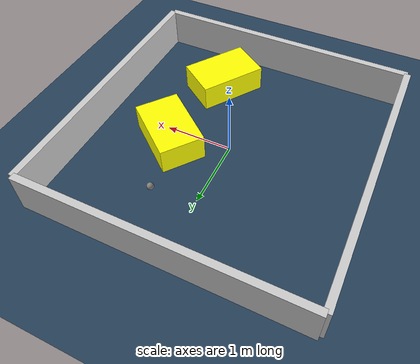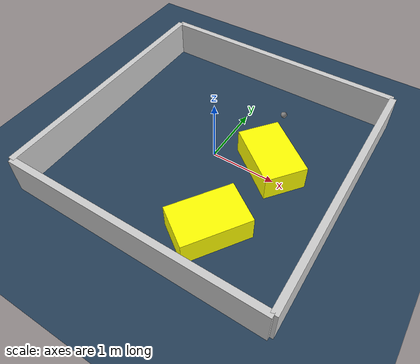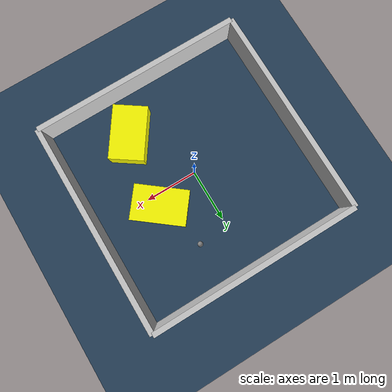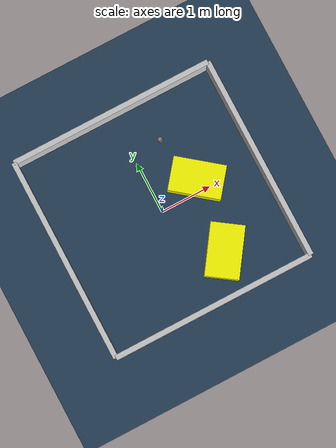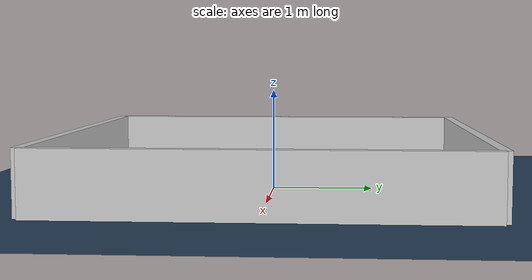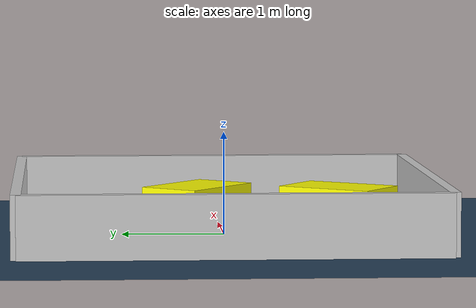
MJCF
<?xml version="1.0" ?>
<mujoco model="generated_environment">
  <option timestep="0.01" integrator="RK4" cone="elliptic"/>
  <default>
    <geom density="1"/>
  </default>
  <asset>
    <texture builtin="gradient" height="3072" rgb1="0.3 0.5 0.7" rgb2="0 0 0" type="skybox" width="512"/>
    <texture builtin="checker" height="300" mark="edge" markrgb="0.8 0.8 0.8" name="groundplane" rgb1="0.2 0.3 0.4" rgb2="0.1 0.2 0.3" type="2d" width="300"/>
    <material name="groundplane" reflectance="0.2" texrepeat="5 5" texture="groundplane" texuniform="true"/>
    <material name="robot" rgba="0.0 1.0 0.0 1"/>
  </asset>
  <worldbody>
    <light dir="0 0 -1" directional="true" pos="0 0 1.5"/>
    <geom condim="4" friction="1.0 0.005 0.001" material="groundplane" name="floor" size="0 0 0.05" type="plane"/>
    <body name="walls">
      <geom name="wall_1" condim="4" pos="-2.0 0.0 0.3" rgba="0.800000011920929 0.800000011920929 0.800000011920929 1.0" size="0.05 2.0 0.3" type="box"/>
      <geom name="wall_2" condim="4" pos="2.0 0.0 0.3" rgba="0.800000011920929 0.800000011920929 0.800000011920929 1.0" size="0.05 2.0 0.3" type="box"/>
      <geom name="wall_3" condim="4" pos="0.0 -2.0 0.3" rgba="0.800000011920929 0.800000011920929 0.800000011920929 1.0" size="2.0 0.05 0.3" type="box"/>
      <geom name="wall_4" condim="4" pos="0.0 2.0 0.3" rgba="0.800000011920929 0.800000011920929 0.800000011920929 1.0" size="2.0 0.05 0.3" type="box"/>
    </body>
    <body name="robot">
      <joint name="joint_x" type="slide" pos="0 0 0" axis="1 0 0"/>
      <joint name="joint_y" type="slide" pos="0 0 0" axis="0 1 0"/>
      <geom name="robot" type="sphere" pos="0.5835648039940455 1.1745729980011541 0.2" size="0.05" mass="5." friction="1.0 0.005 0.0001" condim="4"/>
      <site name="sensor_ball"/>
    </body>
    <body name="obstacle_1_movable">
      <geom name="obstacle_1_movable" condim="4" pos="0.8419544883482968 0.2206210517666647 0.2" euler="0 0 51.81956735432675" friction="1.0 0.005 0.001" rgba="1 1 0 1" size="0.3222768124601324 0.4973344675696938 0.2" type="box" mass="0.1"/>
      <joint type="free"/>
    </body>
    <body name="obstacle_2_movable">
      <geom name="obstacle_2_movable" condim="4" pos="0.6640578651442293 -1.1968907471068786 0.2" euler="0 0 325.4536598902863" friction="1.0 0.005 0.001" rgba="1 1 0 1" size="0.3225310437205447 0.5038845387253765 0.2" type="box" mass="0.1"/>
      <joint type="free"/>
    </body>
  </worldbody>
  <actuator>
    <motor name="actuator_x" joint="joint_x" gear="1" ctrlrange="-1 1"/>
    <motor name="actuator_y" joint="joint_y" gear="1" ctrlrange="-1 1"/>
  </actuator>
</mujoco>
